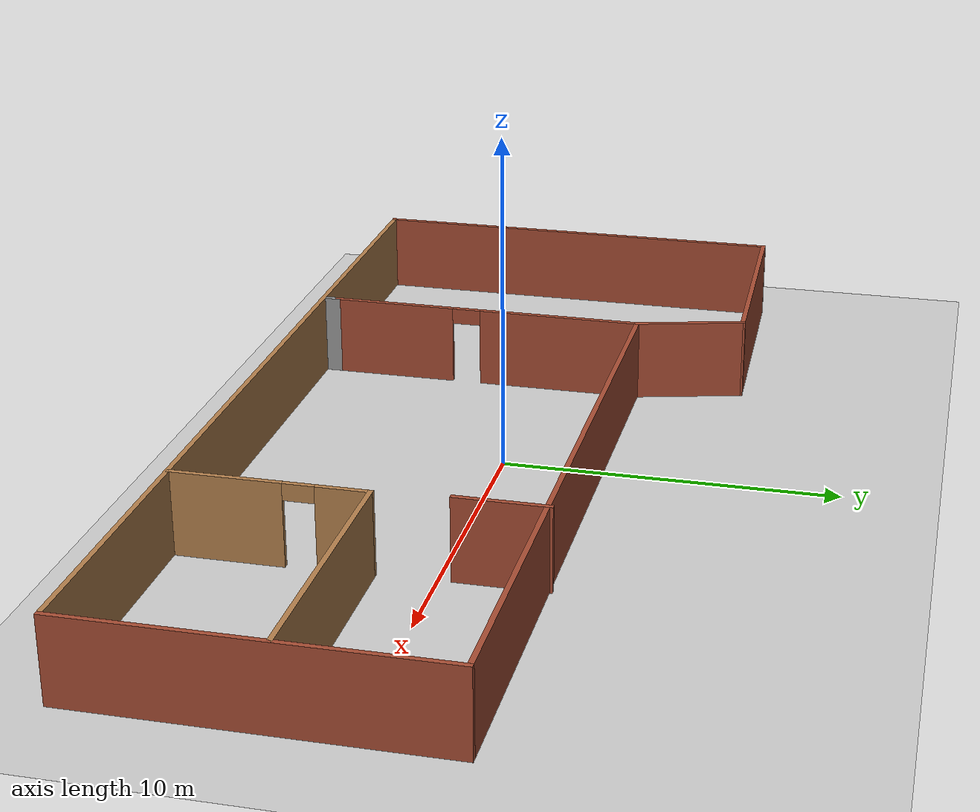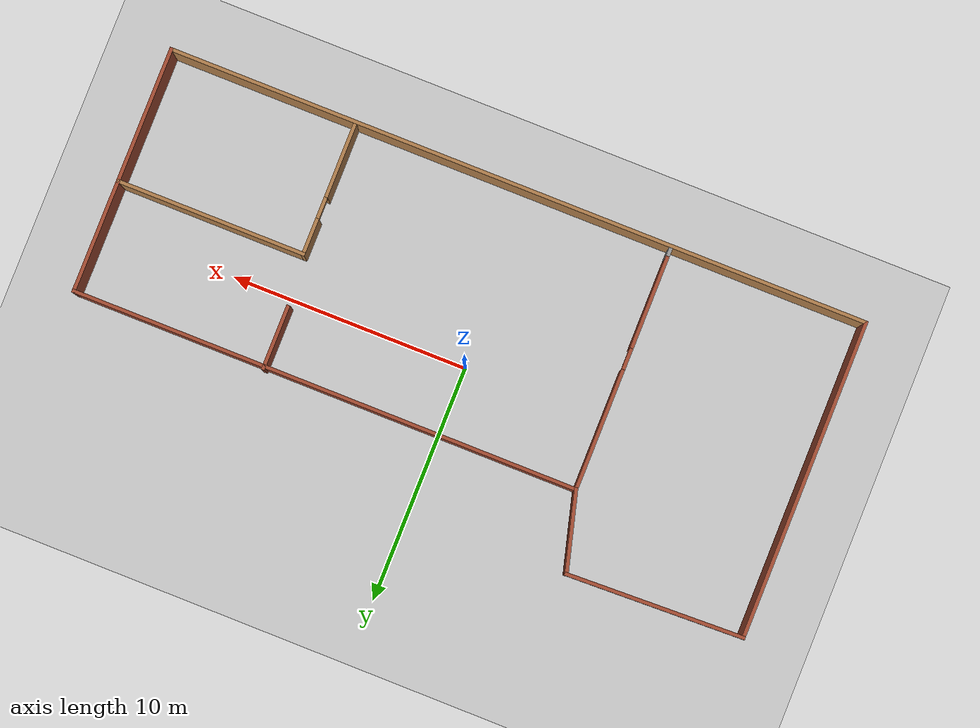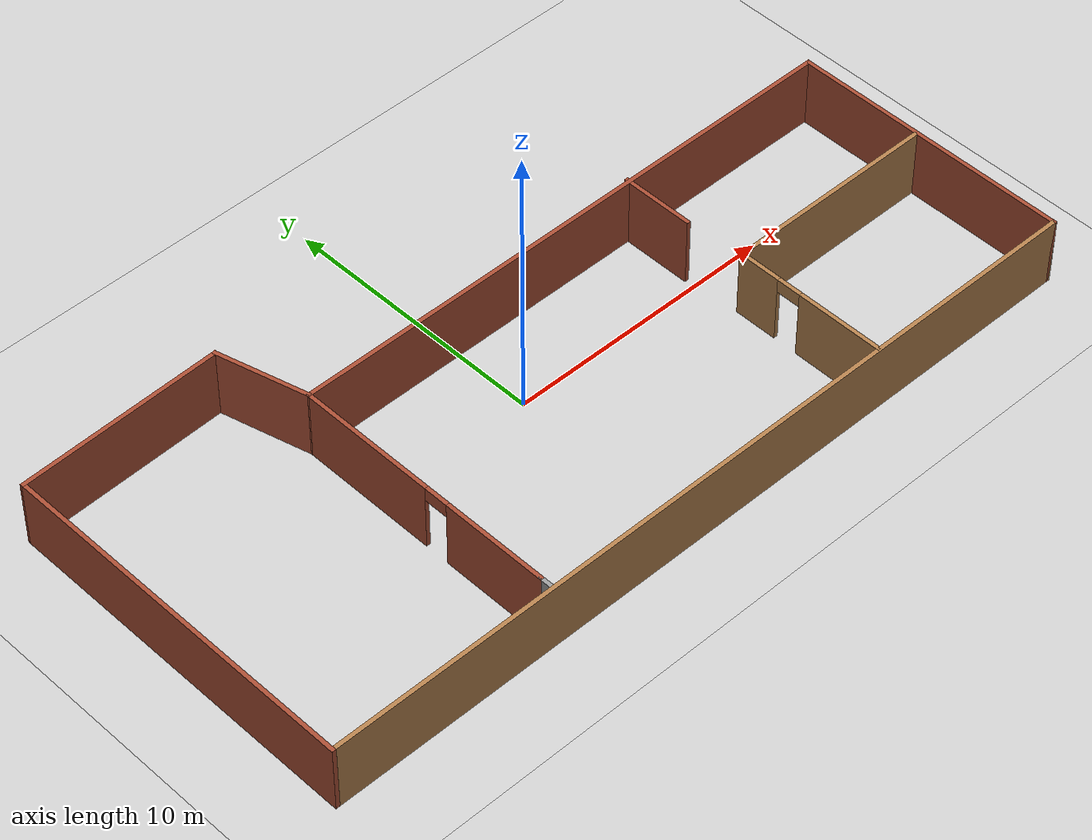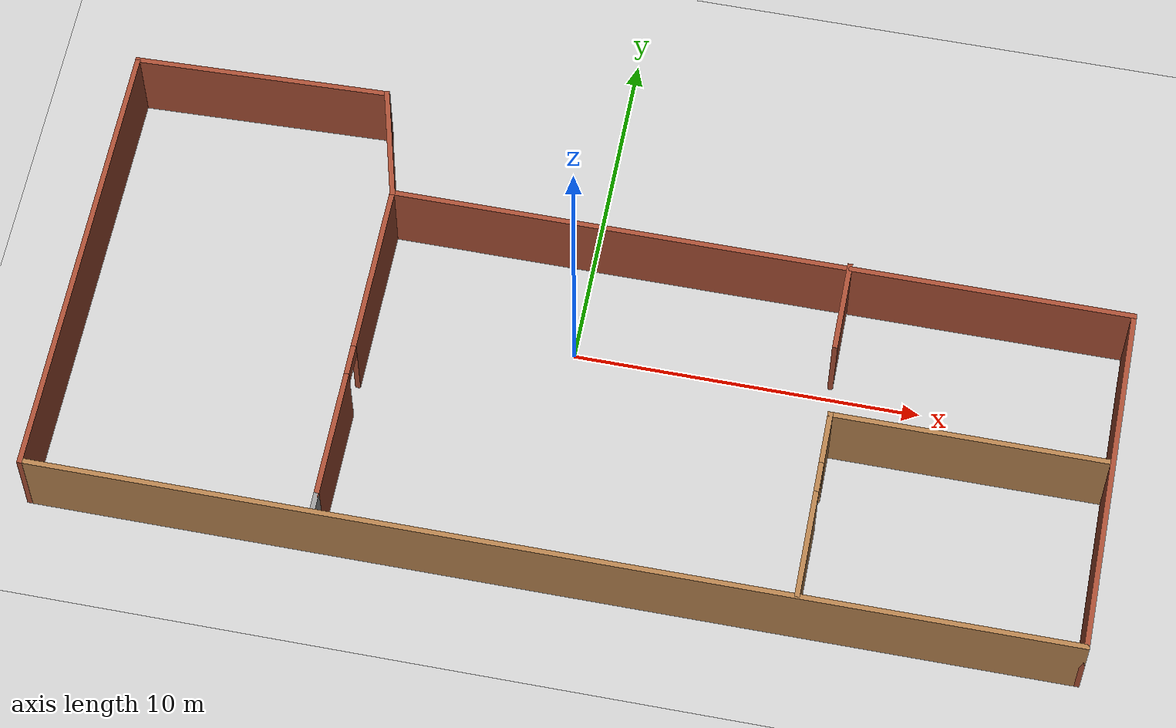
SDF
<sdf version="1.7">
 <world name="default">
  <light name="sun" type="directional">
   <pose>0 0 10 0 -0 0</pose>
   <diffuse>0.8 0.8 0.8 1</diffuse>
   <specular>0.2 0.2 0.2 1</specular>
   <attenuation>
    <range>1000</range>
    <constant>0.9</constant>
    <linear>0.01</linear>
    <quadratic>0.001</quadratic>
   </attenuation>
   <direction>-0.5 0.1 -0.9</direction>
   <spot><inner_angle>0</inner_angle><outer_angle>0</outer_angle><falloff>0</falloff></spot>
  </light>
  <model name="ground_plane">
   <static>1</static>
   <link name="link">
    <collision name="collision">
     <geometry><plane><normal>0 0 1</normal><size>100 100</size></plane></geometry>
     <surface>
      <contact><collide_bitmask>65535</collide_bitmask></contact>
      <friction><ode><mu>100</mu><mu2>50</mu2></ode></friction>
     </surface>
    </collision>
    <visual name="visual">
     <cast_shadows>0</cast_shadows>
     <geometry><plane><normal>0 0 1</normal><size>100 100</size></plane></geometry>
     <material>
      <script><uri>file://media/materials/scripts/gazebo.material</uri><name>Gazebo/Grey</name></script>
     </material>
    </visual>
   </link>
  </model>
  <gravity>0 0 -9.8</gravity>
  <magnetic_field>6e-06 2.3e-05 -4.2e-05</magnetic_field>
  <atmosphere type="adiabatic"/>
  <physics type="ode">
   <max_step_size>0.001</max_step_size>
   <real_time_factor>1</real_time_factor>
   <real_time_update_rate>1000</real_time_update_rate>
  </physics>
  <scene><ambient>0.4 0.4 0.4 1</ambient><background>0.7 0.7 0.7 1</background><shadows>1</shadows></scene>
  <spherical_coordinates>
   <surface_model>EARTH_WGS84</surface_model>
   <latitude_deg>0</latitude_deg>
   <longitude_deg>0</longitude_deg>
   <elevation>0</elevation>
   <heading_deg>0</heading_deg>
  </spherical_coordinates>
  <model name="room2">
   <pose>0.668555 -0.600118 0 0 -0 0</pose>
   <link name="Wall_1">
    <collision name="Wall_1_Collision">
     <geometry><box><size>13.5 0.15 2.5</size></box></geometry>
     <pose>0 0 1.25 0 -0 0</pose>
    </collision>
    <visual name="Wall_1_Visual">
     <pose>0 0 1.25 0 -0 0</pose>
     <geometry><box><size>13.5 0.15 2.5</size></box></geometry>
     <material>
      <script><uri>file://media/materials/scripts/gazebo.material</uri><name>Gazebo/Bricks</name></script>
      <ambient>1 1 1 1</ambient>
     </material>
     <meta><layer>0</layer></meta>
    </visual>
    <pose>-14.7988 -0.126353 0 0 -0 -1.5708</pose>
   </link>
   <link name="Wall_11">
    <pose>6.90648 -3.94893 0 0 -0 1.5708</pose>
    <visual name="Wall_11_Visual_0">
     <pose>-1.25079 0 1.25 0 -0 0</pose>
     <geometry><box><size>3.24841 0.15 2.5</size></box></geometry>
     <material>
      <script><uri>file://media/materials/scripts/gazebo.material</uri><name>Gazebo/Wood</name></script>
      <ambient>1 1 1 1</ambient>
     </material>
     <meta><layer>0</layer></meta>
    </visual>
    <collision name="Wall_11_Collision_0">
     <geometry><box><size>3.24841 0.15 2.5</size></box></geometry>
     <pose>-1.25079 0 1.25 0 -0 0</pose>
    </collision>
    <visual name="Wall_11_Visual_1">
     <pose>2.07421 0 1.25 0 -0 0</pose>
     <geometry><box><size>1.60159 0.15 2.5</size></box></geometry>
     <material>
      <script><uri>file://media/materials/scripts/gazebo.material</uri><name>Gazebo/Wood</name></script>
      <ambient>1 1 1 1</ambient>
     </material>
     <meta><layer>0</layer></meta>
    </visual>
    <collision name="Wall_11_Collision_1">
     <geometry><box><size>1.60159 0.15 2.5</size></box></geometry>
     <pose>2.07421 0 1.25 0 -0 0</pose>
    </collision>
    <visual name="Wall_11_Visual_2">
     <pose>0.823412 0 2.25 0 -0 0</pose>
     <geometry><box><size>0.9 0.15 0.5</size></box></geometry>
     <material>
      <script><uri>file://media/materials/scripts/gazebo.material</uri><name>Gazebo/Wood</name></script>
      <ambient>1 1 1 1</ambient>
     </material>
     <meta><layer>0</layer></meta>
    </visual>
    <collision name="Wall_11_Collision_2">
     <geometry><box><size>0.9 0.15 0.5</size></box></geometry>
     <pose>0.823412 0 2.25 0 -0 0</pose>
    </collision>
   </link>
   <link name="Wall_12">
    <collision name="Wall_12_Collision">
     <geometry><box><size>8 0.15 2.5</size></box></geometry>
     <pose>0 0 1.25 0 -0 0</pose>
    </collision>
    <visual name="Wall_12_Visual">
     <pose>0 0 1.25 0 -0 0</pose>
     <geometry><box><size>8 0.15 2.5</size></box></geometry>
     <material>
      <script><uri>file://media/materials/scripts/gazebo.material</uri><name>Gazebo/Wood</name></script>
      <ambient>1 1 1 1</ambient>
     </material>
     <meta><layer>0</layer></meta>
    </visual>
    <pose>10.8315 -1.14893 0 0 -0 0</pose>
   </link>
   <link name="Wall_14">
    <collision name="Wall_14_Collision">
     <geometry><box><size>2.75 0.15 2.5</size></box></geometry>
     <pose>0 0 1.25 0 -0 0</pose>
    </collision>
    <visual name="Wall_14_Visual">
     <pose>0 0 1.25 0 -0 0</pose>
     <geometry><box><size>2.75 0.15 2.5</size></box></geometry>
     <material>
      <script><uri>file://media/materials/scripts/gazebo.material</uri><name>Gazebo/Bricks</name></script>
      <ambient>1 1 1 1</ambient>
     </material>
     <meta><layer>0</layer></meta>
    </visual>
    <pose>6.6954 2.32881 0 0 -0 -1.5708</pose>
   </link>
   <link name="Wall_2">
    <collision name="Wall_2_Collision">
     <geometry><box><size>29.75 0.15 2.5</size></box></geometry>
     <pose>0 0 1.25 0 -0 0</pose>
    </collision>
    <visual name="Wall_2_Visual">
     <pose>0 0 1.25 0 -0 0</pose>
     <geometry><box><size>29.75 0.15 2.5</size></box></geometry>
     <material>
      <script><uri>file://media/materials/scripts/gazebo.material</uri><name>Gazebo/Wood</name></script>
      <ambient>1 1 1 1</ambient>
     </material>
     <meta><layer>0</layer></meta>
    </visual>
    <pose>0.001179 -6.80135 0 0 -0 0</pose>
   </link>
   <link name="Wall_3">
    <collision name="Wall_3_Collision">
     <geometry><box><size>10.5 0.15 2.5</size></box></geometry>
     <pose>0 0 1.25 0 -0 0</pose>
    </collision>
    <visual name="Wall_3_Visual">
     <pose>0 0 1.25 0 -0 0</pose>
     <geometry><box><size>10.5 0.15 2.5</size></box></geometry>
     <material>
      <script><uri>file://media/materials/scripts/gazebo.material</uri><name>Gazebo/Bricks</name></script>
      <ambient>1 1 1 1</ambient>
     </material>
     <meta><layer>0</layer></meta>
    </visual>
    <pose>14.8012 -1.62635 0 0 -0 1.5708</pose>
   </link>
   <link name="Wall_4">
    <collision name="Wall_4_Collision">
     <geometry><box><size>21.5 0.15 2.5</size></box></geometry>
     <pose>0 0 1.25 0 -0 0</pose>
    </collision>
    <visual name="Wall_4_Visual">
     <pose>0 0 1.25 0 -0 0</pose>
     <geometry><box><size>21.5 0.15 2.5</size></box></geometry>
     <material>
      <script><uri>file://media/materials/scripts/gazebo.material</uri><name>Gazebo/Bricks</name></script>
      <ambient>1 1 1 1</ambient>
     </material>
     <meta><layer>0</layer></meta>
    </visual>
    <pose>4.12618 3.54865 0 0 -0 3.14159</pose>
   </link>
   <link name="Wall_5">
    <collision name="Wall_5_Collision">
     <geometry><box><size>3.5 0.15 2.5</size></box></geometry>
     <pose>0 0 1.25 0 -0 0</pose>
    </collision>
    <visual name="Wall_5_Visual">
     <pose>0 0 1.25 0 -0 0</pose>
     <geometry><box><size>3.5 0.15 2.5</size></box></geometry>
     <material>
      <script><uri>file://media/materials/scripts/gazebo.material</uri><name>Gazebo/Bricks</name></script>
      <ambient>1 1 1 1</ambient>
     </material>
     <meta><layer>0</layer></meta>
    </visual>
    <pose>-6.98234 5.16657 0 0 -0 1.8326</pose>
   </link>
   <link name="Wall_6">
    <collision name="Wall_6_Collision">
     <geometry><box><size>7.53672 0.15 2.5</size></box></geometry>
     <pose>0 0 1.25 0 -0 0</pose>
    </collision>
    <visual name="Wall_6_Visual">
     <pose>0 0 1.25 0 -0 0</pose>
     <geometry><box><size>7.53672 0.15 2.5</size></box></geometry>
     <material>
      <script><uri>file://media/materials/scripts/gazebo.material</uri><name>Gazebo/Bricks</name></script>
      <ambient>1 1 1 1</ambient>
     </material>
     <meta><layer>0</layer></meta>
    </visual>
    <pose>-11.1073 6.66657 0 0 -0 -3.10966</pose>
   </link>
   <link name="Wall_8">
    <pose>-6.54882 -1.37635 0 0 -0 -1.5708</pose>
    <visual name="Wall_8_Visual_0">
     <pose>-2.41328 0 1.25 0 -0 0</pose>
     <geometry><box><size>5.17344 0.15 2.5</size></box></geometry>
     <material>
      <script><uri>file://media/materials/scripts/gazebo.material</uri><name>Gazebo/Bricks</name></script>
      <ambient>1 1 1 1</ambient>
     </material>
     <meta><layer>0</layer></meta>
    </visual>
    <collision name="Wall_8_Collision_0">
     <geometry><box><size>5.17344 0.15 2.5</size></box></geometry>
     <pose>-2.41328 0 1.25 0 -0 0</pose>
    </collision>
    <visual name="Wall_8_Visual_1">
     <pose>3.03672 0 1.25 0 -0 0</pose>
     <geometry><box><size>3.92656 0.15 2.5</size></box></geometry>
     <material>
      <script><uri>file://media/materials/scripts/gazebo.material</uri><name>Gazebo/Bricks</name></script>
      <ambient>1 1 1 1</ambient>
     </material>
     <meta><layer>0</layer></meta>
    </visual>
    <collision name="Wall_8_Collision_1">
     <geometry><box><size>3.92656 0.15 2.5</size></box></geometry>
     <pose>3.03672 0 1.25 0 -0 0</pose>
    </collision>
    <visual name="Wall_8_Visual_2">
     <pose>0.623439 0 2.25 0 -0 0</pose>
     <geometry><box><size>0.9 0.15 0.5</size></box></geometry>
     <material>
      <script><uri>file://media/materials/scripts/gazebo.material</uri><name>Gazebo/Bricks</name></script>
      <ambient>1 1 1 1</ambient>
     </material>
     <meta><layer>0</layer></meta>
    </visual>
    <collision name="Wall_8_Collision_2">
     <geometry><box><size>0.9 0.15 0.5</size></box></geometry>
     <pose>0.623439 0 2.25 0 -0 0</pose>
    </collision>
   </link>
   <link name="Wall_9">
    <collision name="Wall_9_Collision">
     <geometry><box><size>0.5 0.15 2.5</size></box></geometry>
     <pose>0 0 1.25 0 -0 0</pose>
    </collision>
    <visual name="Wall_9_Visual">
     <pose>0 0 1.25 0 -0 0</pose>
     <geometry><box><size>0.5 0.15 2.5</size></box></geometry>
     <material>
      <script><uri>file://media/materials/scripts/gazebo.material</uri><name>Gazebo/Grey</name></script>
      <ambient>1 1 1 1</ambient>
     </material>
     <meta><layer>0</layer></meta>
    </visual>
    <pose>-6.54882 -6.47635 0 0 -0 -1.5708</pose>
   </link>
   <static>1</static>
  </model>
 </world>
</sdf>
